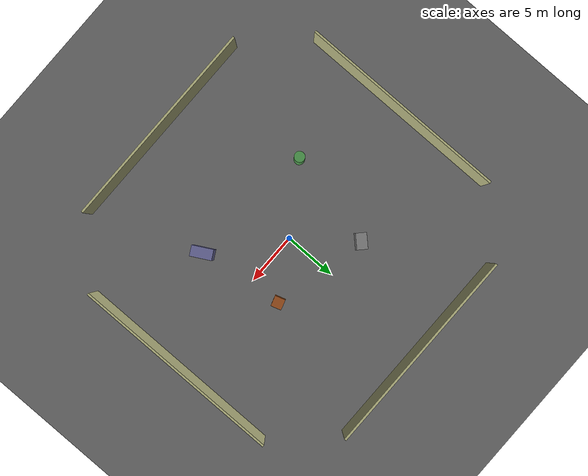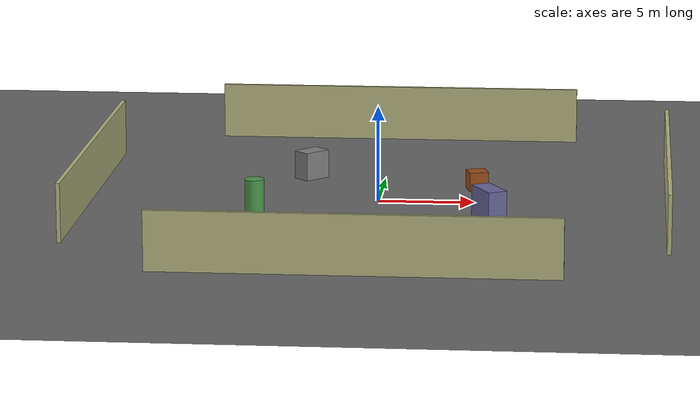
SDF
<?xml version="1.0"?>
<sdf version="1.9">
  <world name="helios_world">

    <!-- ── Physics ───────────────────────────────────────────────────────── -->
    <physics name="1ms" type="ignore">
      <max_step_size>0.001</max_step_size>
      <real_time_factor>1.0</real_time_factor>
    </physics>

    <!-- ── Required plugins ──────────────────────────────────────────────── -->
    <plugin filename="gz-sim-physics-system"
            name="gz::sim::systems::Physics"/>
    <plugin filename="gz-sim-user-commands-system"
            name="gz::sim::systems::UserCommands"/>
    <plugin filename="gz-sim-scene-broadcaster-system"
            name="gz::sim::systems::SceneBroadcaster"/>
    <plugin filename="gz-sim-sensors-system"
            name="gz::sim::systems::Sensors">
      <render_engine>ogre2</render_engine>
    </plugin>
    <plugin filename="gz-sim-imu-system"
            name="gz::sim::systems::Imu"/>
    <plugin filename="gz-sim-air-pressure-system"
            name="gz::sim::systems::AirPressure"/>
    <plugin filename="gz-sim-magnetometer-system"
            name="gz::sim::systems::Magnetometer"/>
    <plugin filename="gz-sim-navsat-system"
            name="gz::sim::systems::NavSat"/>

    <!-- ── Lighting ──────────────────────────────────────────────────────── -->
    <light name="sun" type="directional">
      <cast_shadows>true</cast_shadows>
      <pose>0 0 10 0 0 0</pose>
      <diffuse>0.8 0.8 0.8 1</diffuse>
      <specular>0.2 0.2 0.2 1</specular>
      <direction>-0.5 0.1 -0.9</direction>
    </light>

    <!-- ── Ground plane ──────────────────────────────────────────────────── -->
    <model name="ground_plane">
      <static>true</static>
      <link name="link">
        <collision name="collision">
          <geometry><plane><normal>0 0 1</normal><size>100 100</size></plane></geometry>
        </collision>
        <visual name="visual">
          <geometry><plane><normal>0 0 1</normal><size>100 100</size></plane></geometry>
          <material>
            <ambient>0.4 0.4 0.4 1</ambient>
            <diffuse>0.4 0.4 0.4 1</diffuse>
          </material>
        </visual>
      </link>
    </model>

    <!-- ── Obstacle walls — LiDAR needs something to see ─────────────────── -->
    <!-- Wall North -->
    <model name="wall_north">
      <static>true</static>
      <pose>15 0 1.5 0 0 0</pose>
      <link name="link">
        <collision name="collision">
          <geometry><box><size>0.2 20 3</size></box></geometry>
        </collision>
        <visual name="visual">
          <geometry><box><size>0.2 20 3</size></box></geometry>
          <material><ambient>0.7 0.7 0.5 1</ambient><diffuse>0.7 0.7 0.5 1</diffuse></material>
        </visual>
      </link>
    </model>

    <!-- Wall South -->
    <model name="wall_south">
      <static>true</static>
      <pose>-15 0 1.5 0 0 0</pose>
      <link name="link">
        <collision name="collision">
          <geometry><box><size>0.2 20 3</size></box></geometry>
        </collision>
        <visual name="visual">
          <geometry><box><size>0.2 20 3</size></box></geometry>
          <material><ambient>0.7 0.7 0.5 1</ambient><diffuse>0.7 0.7 0.5 1</diffuse></material>
        </visual>
      </link>
    </model>

    <!-- Wall East -->
    <model name="wall_east">
      <static>true</static>
      <pose>0 15 1.5 0 0 0</pose>
      <link name="link">
        <collision name="collision">
          <geometry><box><size>20 0.2 3</size></box></geometry>
        </collision>
        <visual name="visual">
          <geometry><box><size>20 0.2 3</size></box></geometry>
          <material><ambient>0.7 0.7 0.5 1</ambient><diffuse>0.7 0.7 0.5 1</diffuse></material>
        </visual>
      </link>
    </model>

    <!-- Wall West -->
    <model name="wall_west">
      <static>true</static>
      <pose>0 -15 1.5 0 0 0</pose>
      <link name="link">
        <collision name="collision">
          <geometry><box><size>20 0.2 3</size></box></geometry>
        </collision>
        <visual name="visual">
          <geometry><box><size>20 0.2 3</size></box></geometry>
          <material><ambient>0.7 0.7 0.5 1</ambient><diffuse>0.7 0.7 0.5 1</diffuse></material>
        </visual>
      </link>
    </model>

    <!-- Scattered obstacles — simulate debris -->
    <model name="box_1">
      <static>true</static>
      <pose>5 3 0.5 0 0 0.3</pose>
      <link name="link">
        <collision name="collision"><geometry><box><size>1 1 1</size></box></geometry></collision>
        <visual name="visual">
          <geometry><box><size>1 1 1</size></box></geometry>
          <material><ambient>0.6 0.3 0.1 1</ambient><diffuse>0.6 0.3 0.1 1</diffuse></material>
        </visual>
      </link>
    </model>

    <model name="box_2">
      <static>true</static>
      <pose>-4 5 0.75 0 0 0.8</pose>
      <link name="link">
        <collision name="collision"><geometry><box><size>1.5 1 1.5</size></box></geometry></collision>
        <visual name="visual">
          <geometry><box><size>1.5 1 1.5</size></box></geometry>
          <material><ambient>0.5 0.5 0.5 1</ambient><diffuse>0.5 0.5 0.5 1</diffuse></material>
        </visual>
      </link>
    </model>

    <model name="box_3">
      <static>true</static>
      <pose>6 -5 1.0 0 0 0.5</pose>
      <link name="link">
        <collision name="collision"><geometry><box><size>1 2 2</size></box></geometry></collision>
        <visual name="visual">
          <geometry><box><size>1 2 2</size></box></geometry>
          <material><ambient>0.4 0.4 0.6 1</ambient><diffuse>0.4 0.4 0.6 1</diffuse></material>
        </visual>
      </link>
    </model>

    <model name="cylinder_1">
      <static>true</static>
      <pose>-6 -4 1.0 0 0 0</pose>
      <link name="link">
        <collision name="collision"><geometry><cylinder><radius>0.5</radius><length>2</length></cylinder></geometry></collision>
        <visual name="visual">
          <geometry><cylinder><radius>0.5</radius><length>2</length></cylinder></geometry>
          <material><ambient>0.3 0.6 0.3 1</ambient><diffuse>0.3 0.6 0.3 1</diffuse></material>
        </visual>
      </link>
    </model>

    <!-- ── Spawn point — drone starts here ───────────────────────────────── -->
    <model name="spawn_point">
      <static>true</static>
      <pose>0 0 0 0 0 0</pose>
      <link name="link"/>
    </model>

  </world>
</sdf>
